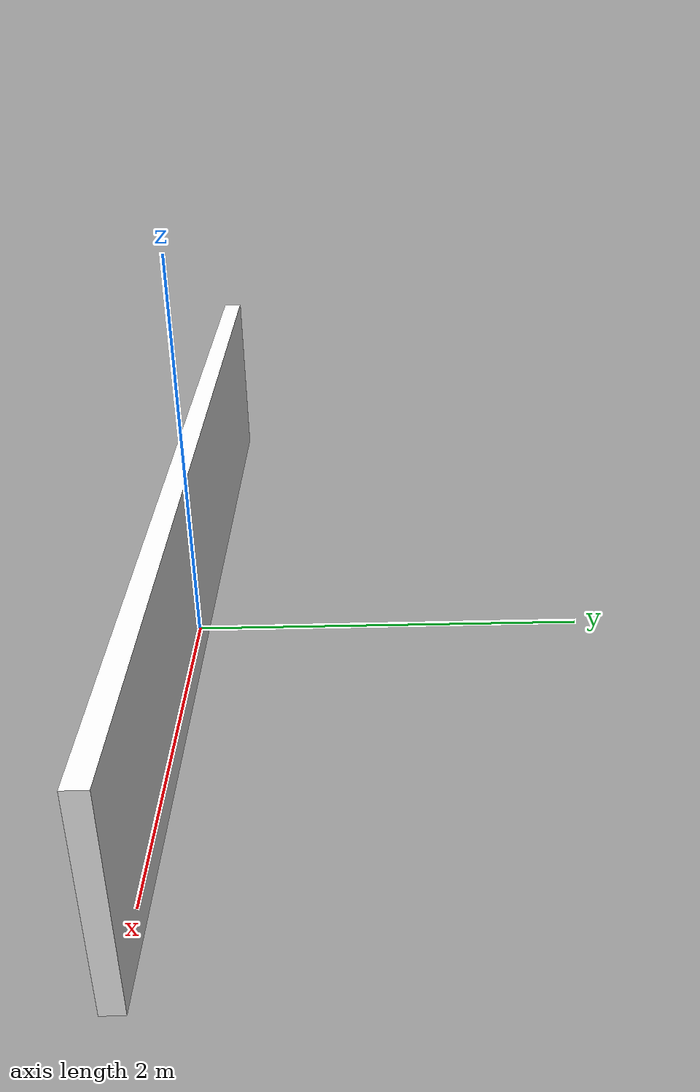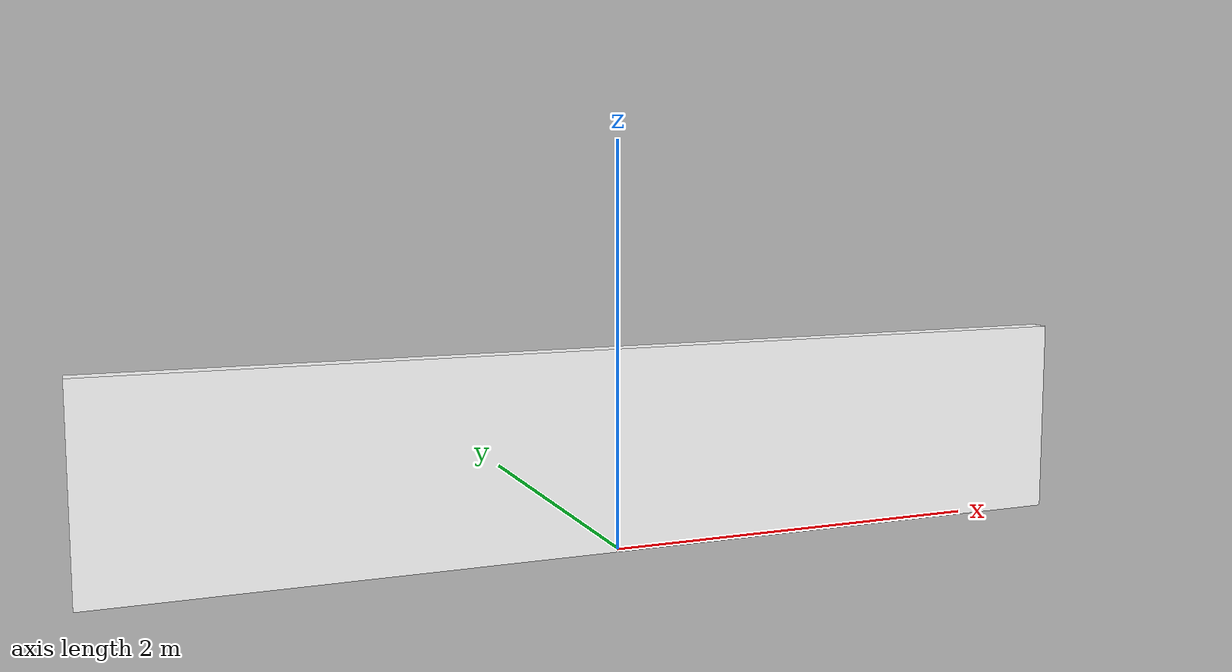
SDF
<?xml version="1.0"?>
<sdf version='1.8'>
  <model name='room_wall_2x5m'>
    <link name="link">
      <pose>0 0 0.5 0 0 1.570796326795</pose>
      <visual name="visual">
        <geometry>
          <box>
            <size>0.1 5.0 1</size>
          </box>
        </geometry>
        <material>
          <ambient>1 1 1 1</ambient>
          <diffuse>1 1 1 1</diffuse>
          <specular>1 1 1 1</specular>
        </material>
      </visual>
      <collision name="collision">
        <geometry>
          <box>
            <size>0.1 5.0 1</size>
          </box>
        </geometry>
      </collision>
    </link>
    <static>1</static>
    <allow_auto_disable>1</allow_auto_disable>
  </model>
</sdf>
